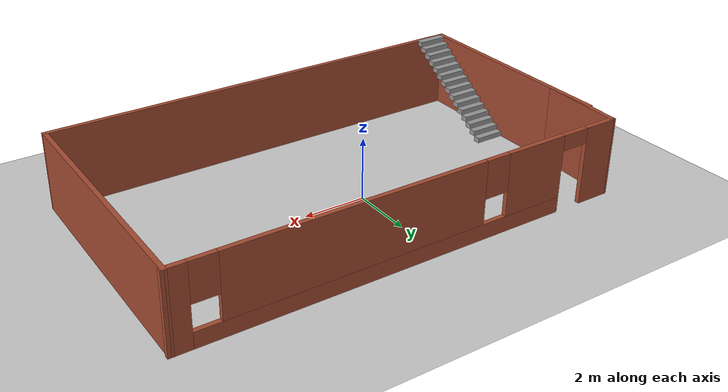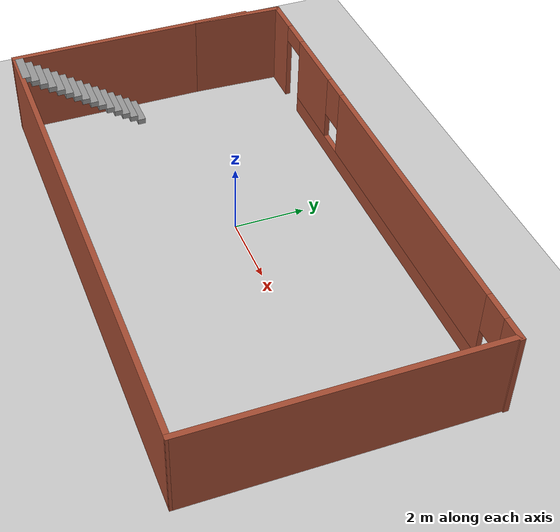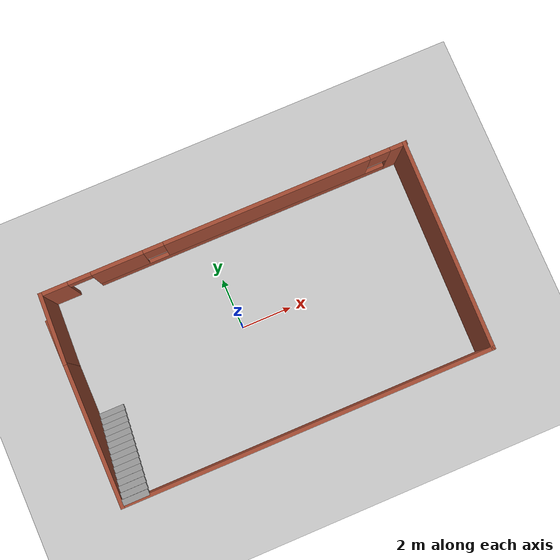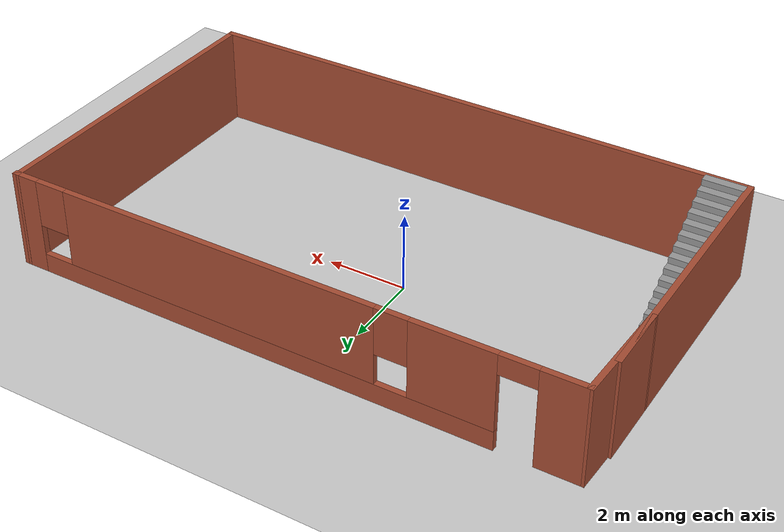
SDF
<sdf version="1.7">
 <world name="default">
  <light name="sun" type="directional">
   <pose>0 0 10 0 -0 0</pose>
   <diffuse>0.8 0.8 0.8 1</diffuse>
   <specular>0.2 0.2 0.2 1</specular>
   <attenuation>
    <range>1000</range>
    <constant>0.9</constant>
    <linear>0.01</linear>
    <quadratic>0.001</quadratic>
   </attenuation>
   <direction>-0.5 0.1 -0.9</direction>
   <spot><inner_angle>0</inner_angle><outer_angle>0</outer_angle><falloff>0</falloff></spot>
  </light>
  <model name="ground_plane">
   <static>1</static>
   <link name="link">
    <collision name="collision">
     <geometry><plane><normal>0 0 1</normal><size>100 100</size></plane></geometry>
     <surface>
      <contact><collide_bitmask>65535</collide_bitmask></contact>
      <friction><ode><mu>100</mu><mu2>50</mu2></ode></friction>
     </surface>
    </collision>
    <visual name="visual">
     <cast_shadows>0</cast_shadows>
     <geometry><plane><normal>0 0 1</normal><size>100 100</size></plane></geometry>
     <material>
      <script><uri>file://media/materials/scripts/gazebo.material</uri><name>Gazebo/Grey</name></script>
     </material>
    </visual>
   </link>
  </model>
  <gravity>0 0 -9.8</gravity>
  <magnetic_field>6e-06 2.3e-05 -4.2e-05</magnetic_field>
  <atmosphere type="adiabatic"/>
  <physics type="ode">
   <max_step_size>0.001</max_step_size>
   <real_time_factor>1</real_time_factor>
   <real_time_update_rate>1000</real_time_update_rate>
  </physics>
  <scene><ambient>0.4 0.4 0.4 1</ambient><background>0.7 0.7 0.7 1</background><shadows>1</shadows></scene>
  <spherical_coordinates>
   <surface_model>EARTH_WGS84</surface_model>
   <latitude_deg>0</latitude_deg>
   <longitude_deg>0</longitude_deg>
   <elevation>0</elevation>
   <heading_deg>0</heading_deg>
  </spherical_coordinates>
  <model name="Untitled">
   <pose>0.842966 -0.365552 0 0 -0 0</pose>
   <link name="Stairs_0">
    <visual name="Stairs_0_Visual_0">
     <pose>-6.68102 -0.67867 0.083333 0 -0 0</pose>
     <geometry><box><size>1 0.233333 0.166667</size></box></geometry>
     <material>
      <script><uri>file://media/materials/scripts/gazebo.material</uri><name>Gazebo/Grey</name></script>
      <ambient>1 1 1 1</ambient>
     </material>
     <meta><layer>0</layer></meta>
    </visual>
    <collision name="Stairs_0_Collision_0">
     <geometry><box><size>1 0.233333 0.166667</size></box></geometry>
     <pose>-6.68102 -0.67867 0.083333 0 -0 0</pose>
    </collision>
    <visual name="Stairs_0_Visual_1">
     <pose>-6.68102 -0.912004 0.25 0 -0 0</pose>
     <geometry><box><size>1 0.233333 0.166667</size></box></geometry>
     <material>
      <script><uri>file://media/materials/scripts/gazebo.material</uri><name>Gazebo/Grey</name></script>
      <ambient>1 1 1 1</ambient>
     </material>
     <meta><layer>0</layer></meta>
    </visual>
    <collision name="Stairs_0_Collision_1">
     <geometry><box><size>1 0.233333 0.166667</size></box></geometry>
     <pose>-6.68102 -0.912004 0.25 0 -0 0</pose>
    </collision>
    <visual name="Stairs_0_Visual_2">
     <pose>-6.68102 -1.14534 0.416667 0 -0 0</pose>
     <geometry><box><size>1 0.233333 0.166667</size></box></geometry>
     <material>
      <script><uri>file://media/materials/scripts/gazebo.material</uri><name>Gazebo/Grey</name></script>
      <ambient>1 1 1 1</ambient>
     </material>
     <meta><layer>0</layer></meta>
    </visual>
    <collision name="Stairs_0_Collision_2">
     <geometry><box><size>1 0.233333 0.166667</size></box></geometry>
     <pose>-6.68102 -1.14534 0.416667 0 -0 0</pose>
    </collision>
    <visual name="Stairs_0_Visual_3">
     <pose>-6.68102 -1.37867 0.583333 0 -0 0</pose>
     <geometry><box><size>1 0.233333 0.166667</size></box></geometry>
     <material>
      <script><uri>file://media/materials/scripts/gazebo.material</uri><name>Gazebo/Grey</name></script>
      <ambient>1 1 1 1</ambient>
     </material>
     <meta><layer>0</layer></meta>
    </visual>
    <collision name="Stairs_0_Collision_3">
     <geometry><box><size>1 0.233333 0.166667</size></box></geometry>
     <pose>-6.68102 -1.37867 0.583333 0 -0 0</pose>
    </collision>
    <visual name="Stairs_0_Visual_4">
     <pose>-6.68102 -1.612 0.75 0 -0 0</pose>
     <geometry><box><size>1 0.233333 0.166667</size></box></geometry>
     <material>
      <script><uri>file://media/materials/scripts/gazebo.material</uri><name>Gazebo/Grey</name></script>
      <ambient>1 1 1 1</ambient>
     </material>
     <meta><layer>0</layer></meta>
    </visual>
    <collision name="Stairs_0_Collision_4">
     <geometry><box><size>1 0.233333 0.166667</size></box></geometry>
     <pose>-6.68102 -1.612 0.75 0 -0 0</pose>
    </collision>
    <visual name="Stairs_0_Visual_5">
     <pose>-6.68102 -1.84534 0.916667 0 -0 0</pose>
     <geometry><box><size>1 0.233333 0.166667</size></box></geometry>
     <material>
      <script><uri>file://media/materials/scripts/gazebo.material</uri><name>Gazebo/Grey</name></script>
      <ambient>1 1 1 1</ambient>
     </material>
     <meta><layer>0</layer></meta>
    </visual>
    <collision name="Stairs_0_Collision_5">
     <geometry><box><size>1 0.233333 0.166667</size></box></geometry>
     <pose>-6.68102 -1.84534 0.916667 0 -0 0</pose>
    </collision>
    <visual name="Stairs_0_Visual_6">
     <pose>-6.68102 -2.07867 1.08333 0 -0 0</pose>
     <geometry><box><size>1 0.233333 0.166667</size></box></geometry>
     <material>
      <script><uri>file://media/materials/scripts/gazebo.material</uri><name>Gazebo/Grey</name></script>
      <ambient>1 1 1 1</ambient>
     </material>
     <meta><layer>0</layer></meta>
    </visual>
    <collision name="Stairs_0_Collision_6">
     <geometry><box><size>1 0.233333 0.166667</size></box></geometry>
     <pose>-6.68102 -2.07867 1.08333 0 -0 0</pose>
    </collision>
    <visual name="Stairs_0_Visual_7">
     <pose>-6.68102 -2.312 1.25 0 -0 0</pose>
     <geometry><box><size>1 0.233333 0.166667</size></box></geometry>
     <material>
      <script><uri>file://media/materials/scripts/gazebo.material</uri><name>Gazebo/Grey</name></script>
      <ambient>1 1 1 1</ambient>
     </material>
     <meta><layer>0</layer></meta>
    </visual>
    <collision name="Stairs_0_Collision_7">
     <geometry><box><size>1 0.233333 0.166667</size></box></geometry>
     <pose>-6.68102 -2.312 1.25 0 -0 0</pose>
    </collision>
    <visual name="Stairs_0_Visual_8">
     <pose>-6.68102 -2.54534 1.41667 0 -0 0</pose>
     <geometry><box><size>1 0.233333 0.166667</size></box></geometry>
     <material>
      <script><uri>file://media/materials/scripts/gazebo.material</uri><name>Gazebo/Grey</name></script>
      <ambient>1 1 1 1</ambient>
     </material>
     <meta><layer>0</layer></meta>
    </visual>
    <collision name="Stairs_0_Collision_8">
     <geometry><box><size>1 0.233333 0.166667</size></box></geometry>
     <pose>-6.68102 -2.54534 1.41667 0 -0 0</pose>
    </collision>
    <visual name="Stairs_0_Visual_9">
     <pose>-6.68102 -2.77867 1.58333 0 -0 0</pose>
     <geometry><box><size>1 0.233333 0.166667</size></box></geometry>
     <material>
      <script><uri>file://media/materials/scripts/gazebo.material</uri><name>Gazebo/Grey</name></script>
      <ambient>1 1 1 1</ambient>
     </material>
     <meta><layer>0</layer></meta>
    </visual>
    <collision name="Stairs_0_Collision_9">
     <geometry><box><size>1 0.233333 0.166667</size></box></geometry>
     <pose>-6.68102 -2.77867 1.58333 0 -0 0</pose>
    </collision>
    <visual name="Stairs_0_Visual_10">
     <pose>-6.68102 -3.012 1.75 0 -0 0</pose>
     <geometry><box><size>1 0.233333 0.166667</size></box></geometry>
     <material>
      <script><uri>file://media/materials/scripts/gazebo.material</uri><name>Gazebo/Grey</name></script>
      <ambient>1 1 1 1</ambient>
     </material>
     <meta><layer>0</layer></meta>
    </visual>
    <collision name="Stairs_0_Collision_10">
     <geometry><box><size>1 0.233333 0.166667</size></box></geometry>
     <pose>-6.68102 -3.012 1.75 0 -0 0</pose>
    </collision>
    <visual name="Stairs_0_Visual_11">
     <pose>-6.68102 -3.24534 1.91667 0 -0 0</pose>
     <geometry><box><size>1 0.233333 0.166667</size></box></geometry>
     <material>
      <script><uri>file://media/materials/scripts/gazebo.material</uri><name>Gazebo/Grey</name></script>
      <ambient>1 1 1 1</ambient>
     </material>
     <meta><layer>0</layer></meta>
    </visual>
    <collision name="Stairs_0_Collision_11">
     <geometry><box><size>1 0.233333 0.166667</size></box></geometry>
     <pose>-6.68102 -3.24534 1.91667 0 -0 0</pose>
    </collision>
    <visual name="Stairs_0_Visual_12">
     <pose>-6.68102 -3.47867 2.08333 0 -0 0</pose>
     <geometry><box><size>1 0.233333 0.166667</size></box></geometry>
     <material>
      <script><uri>file://media/materials/scripts/gazebo.material</uri><name>Gazebo/Grey</name></script>
      <ambient>1 1 1 1</ambient>
     </material>
     <meta><layer>0</layer></meta>
    </visual>
    <collision name="Stairs_0_Collision_12">
     <geometry><box><size>1 0.233333 0.166667</size></box></geometry>
     <pose>-6.68102 -3.47867 2.08333 0 -0 0</pose>
    </collision>
    <visual name="Stairs_0_Visual_13">
     <pose>-6.68102 -3.712 2.25 0 -0 0</pose>
     <geometry><box><size>1 0.233333 0.166667</size></box></geometry>
     <material>
      <script><uri>file://media/materials/scripts/gazebo.material</uri><name>Gazebo/Grey</name></script>
      <ambient>1 1 1 1</ambient>
     </material>
     <meta><layer>0</layer></meta>
    </visual>
    <collision name="Stairs_0_Collision_13">
     <geometry><box><size>1 0.233333 0.166667</size></box></geometry>
     <pose>-6.68102 -3.712 2.25 0 -0 0</pose>
    </collision>
    <visual name="Stairs_0_Visual_14">
     <pose>-6.68102 -3.94534 2.41667 0 -0 0</pose>
     <geometry><box><size>1 0.233333 0.166667</size></box></geometry>
     <material>
      <script><uri>file://media/materials/scripts/gazebo.material</uri><name>Gazebo/Grey</name></script>
      <ambient>1 1 1 1</ambient>
     </material>
     <meta><layer>0</layer></meta>
    </visual>
    <collision name="Stairs_0_Collision_14">
     <geometry><box><size>1 0.233333 0.166667</size></box></geometry>
     <pose>-6.68102 -3.94534 2.41667 0 -0 0</pose>
    </collision>
   </link>
   <link name="Wall_10">
    <collision name="Wall_10_Collision">
     <geometry><box><size>8.27837 0.15 2.5</size></box></geometry>
     <pose>0 0 1.25 0 -0 0</pose>
    </collision>
    <visual name="Wall_10_Visual">
     <pose>0 0 1.25 0 -0 0</pose>
     <geometry><box><size>8.27837 0.15 2.5</size></box></geometry>
     <material>
      <script><uri>file://media/materials/scripts/gazebo.material</uri><name>Gazebo/Bricks</name></script>
      <ambient>1 1 1 1</ambient>
     </material>
     <meta><layer>0</layer></meta>
    </visual>
    <pose>7.15889 -0.000991 0 0 -0 1.55781</pose>
   </link>
   <link name="Wall_11">
    <pose>0.071832 4.06285 0 0 -0 3.14159</pose>
    <visual name="Wall_11_Visual_0">
     <pose>-6.90388 0 1.25 0 -0 0</pose>
     <geometry><box><size>0.692249 0.15 2.5</size></box></geometry>
     <material>
      <script><uri>file://media/materials/scripts/gazebo.material</uri><name>Gazebo/Bricks</name></script>
      <ambient>1 1 1 1</ambient>
     </material>
     <meta><layer>0</layer></meta>
    </visual>
    <collision name="Wall_11_Collision_0">
     <geometry><box><size>0.692249 0.15 2.5</size></box></geometry>
     <pose>-6.90388 0 1.25 0 -0 0</pose>
    </collision>
    <visual name="Wall_11_Visual_1">
     <pose>6.69875 0 1.25 0 -0 0</pose>
     <geometry><box><size>1.10251 0.15 2.5</size></box></geometry>
     <material>
      <script><uri>file://media/materials/scripts/gazebo.material</uri><name>Gazebo/Bricks</name></script>
      <ambient>1 1 1 1</ambient>
     </material>
     <meta><layer>0</layer></meta>
    </visual>
    <collision name="Wall_11_Collision_1">
     <geometry><box><size>1.10251 0.15 2.5</size></box></geometry>
     <pose>6.69875 0 1.25 0 -0 0</pose>
    </collision>
    <visual name="Wall_11_Visual_2">
     <pose>-0.655129 0 0.25 0 -0 0</pose>
     <geometry><box><size>11.8052 0.15 0.5</size></box></geometry>
     <material>
      <script><uri>file://media/materials/scripts/gazebo.material</uri><name>Gazebo/Bricks</name></script>
      <ambient>1 1 1 1</ambient>
     </material>
     <meta><layer>0</layer></meta>
    </visual>
    <collision name="Wall_11_Collision_2">
     <geometry><box><size>11.8052 0.15 0.5</size></box></geometry>
     <pose>-0.655129 0 0.25 0 -0 0</pose>
    </collision>
    <visual name="Wall_11_Visual_3">
     <pose>-1.67246 0 1.5 0 -0 0</pose>
     <geometry><box><size>8.17059 0.15 2</size></box></geometry>
     <material>
      <script><uri>file://media/materials/scripts/gazebo.material</uri><name>Gazebo/Bricks</name></script>
      <ambient>1 1 1 1</ambient>
     </material>
     <meta><layer>0</layer></meta>
    </visual>
    <collision name="Wall_11_Collision_3">
     <geometry><box><size>8.17059 0.15 2</size></box></geometry>
     <pose>-1.67246 0 1.5 0 -0 0</pose>
    </collision>
    <visual name="Wall_11_Visual_4">
     <pose>4.23016 0 1.5 0 -0 0</pose>
     <geometry><box><size>2.03466 0.15 2</size></box></geometry>
     <material>
      <script><uri>file://media/materials/scripts/gazebo.material</uri><name>Gazebo/Bricks</name></script>
      <ambient>1 1 1 1</ambient>
     </material>
     <meta><layer>0</layer></meta>
    </visual>
    <collision name="Wall_11_Collision_4">
     <geometry><box><size>2.03466 0.15 2</size></box></geometry>
     <pose>4.23016 0 1.5 0 -0 0</pose>
    </collision>
    <visual name="Wall_11_Visual_5">
     <pose>-6.15775 0 1.9 0 -0 0</pose>
     <geometry><box><size>0.8 0.15 1.2</size></box></geometry>
     <material>
      <script><uri>file://media/materials/scripts/gazebo.material</uri><name>Gazebo/Bricks</name></script>
      <ambient>1 1 1 1</ambient>
     </material>
     <meta><layer>0</layer></meta>
    </visual>
    <collision name="Wall_11_Collision_5">
     <geometry><box><size>0.8 0.15 1.2</size></box></geometry>
     <pose>-6.15775 0 1.9 0 -0 0</pose>
    </collision>
    <visual name="Wall_11_Visual_6">
     <pose>2.81283 0 1.9 0 -0 0</pose>
     <geometry><box><size>0.8 0.15 1.2</size></box></geometry>
     <material>
      <script><uri>file://media/materials/scripts/gazebo.material</uri><name>Gazebo/Bricks</name></script>
      <ambient>1 1 1 1</ambient>
     </material>
     <meta><layer>0</layer></meta>
    </visual>
    <collision name="Wall_11_Collision_6">
     <geometry><box><size>0.8 0.15 1.2</size></box></geometry>
     <pose>2.81283 0 1.9 0 -0 0</pose>
    </collision>
    <visual name="Wall_11_Visual_7">
     <pose>5.69749 0 2.25 0 -0 0</pose>
     <geometry><box><size>0.9 0.15 0.5</size></box></geometry>
     <material>
      <script><uri>file://media/materials/scripts/gazebo.material</uri><name>Gazebo/Bricks</name></script>
      <ambient>1 1 1 1</ambient>
     </material>
     <meta><layer>0</layer></meta>
    </visual>
    <collision name="Wall_11_Collision_7">
     <geometry><box><size>0.9 0.15 0.5</size></box></geometry>
     <pose>5.69749 0 2.25 0 -0 0</pose>
    </collision>
   </link>
   <link name="Wall_12">
    <collision name="Wall_12_Collision">
     <geometry><box><size>2.7798 0.15 2.5</size></box></geometry>
     <pose>0 0 1.25 0 -0 0</pose>
    </collision>
    <visual name="Wall_12_Visual">
     <pose>0 0 1.25 0 -0 0</pose>
     <geometry><box><size>2.7798 0.15 2.5</size></box></geometry>
     <material>
      <script><uri>file://media/materials/scripts/gazebo.material</uri><name>Gazebo/Bricks</name></script>
      <ambient>1 1 1 1</ambient>
     </material>
     <meta><layer>0</layer></meta>
    </visual>
    <pose>-7.19111 2.74901 0 0 -0 -1.61094</pose>
   </link>
   <link name="Wall_8">
    <collision name="Wall_8_Collision">
     <geometry><box><size>7.25 0.15 2.5</size></box></geometry>
     <pose>0 0 1.25 0 -0 0</pose>
    </collision>
    <visual name="Wall_8_Visual">
     <pose>0 0 1.25 0 -0 0</pose>
     <geometry><box><size>7.25 0.15 2.5</size></box></geometry>
     <material>
      <script><uri>file://media/materials/scripts/gazebo.material</uri><name>Gazebo/Bricks</name></script>
      <ambient>1 1 1 1</ambient>
     </material>
     <meta><layer>0</layer></meta>
    </visual>
    <pose>-7.24388 -0.514832 0 0 -0 -1.5708</pose>
   </link>
   <link name="Wall_9">
    <collision name="Wall_9_Collision">
     <geometry><box><size>14.5 0.15 2.5</size></box></geometry>
     <pose>0 0 1.25 0 -0 0</pose>
    </collision>
    <visual name="Wall_9_Visual">
     <pose>0 0 1.25 0 -0 0</pose>
     <geometry><box><size>14.5 0.15 2.5</size></box></geometry>
     <material>
      <script><uri>file://media/materials/scripts/gazebo.material</uri><name>Gazebo/Bricks</name></script>
      <ambient>1 1 1 1</ambient>
     </material>
     <meta><layer>0</layer></meta>
    </visual>
    <pose>-0.068883 -4.06483 0 0 -0 0</pose>
   </link>
   <static>1</static>
  </model>
 </world>
</sdf>
